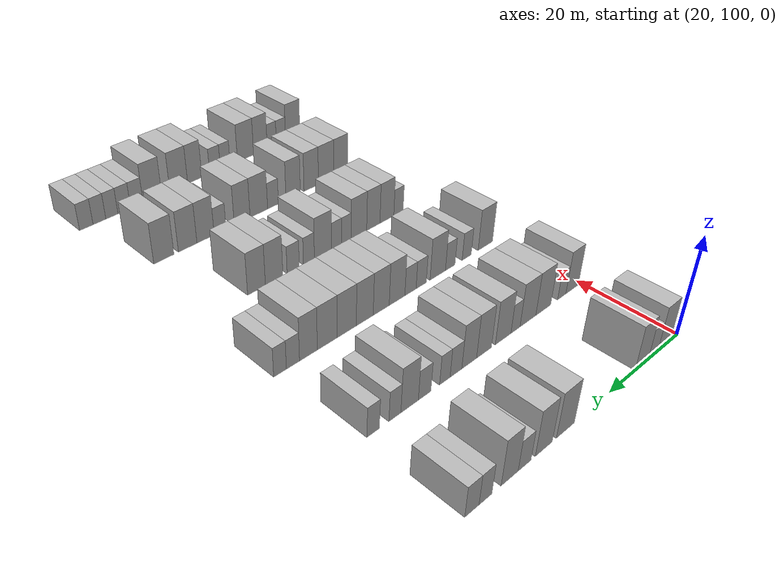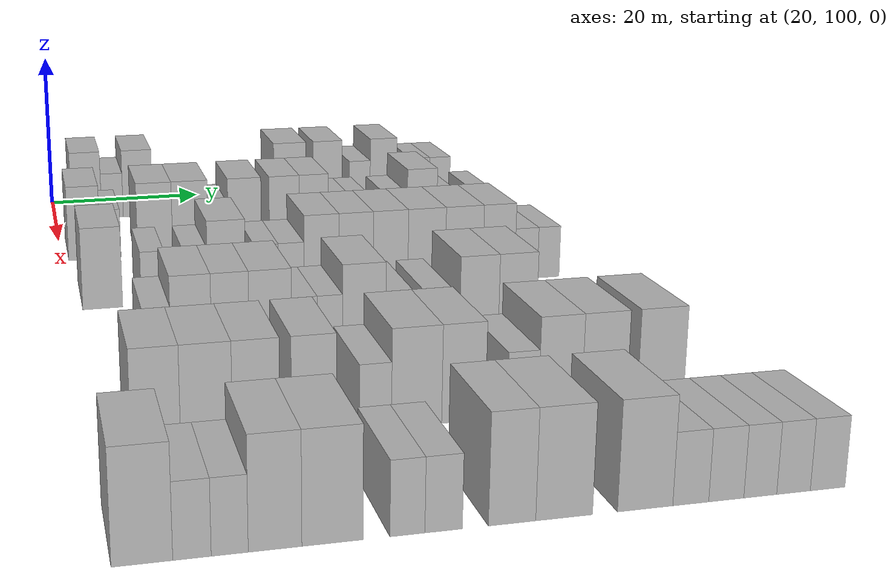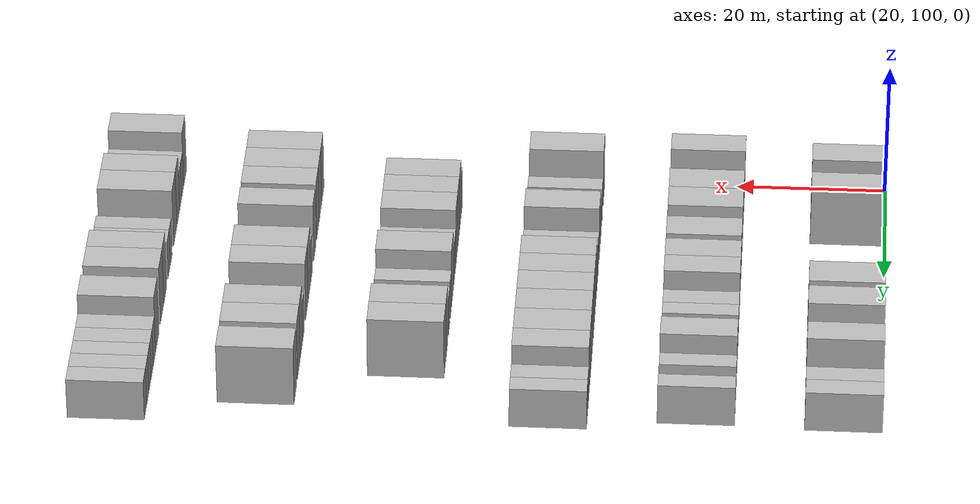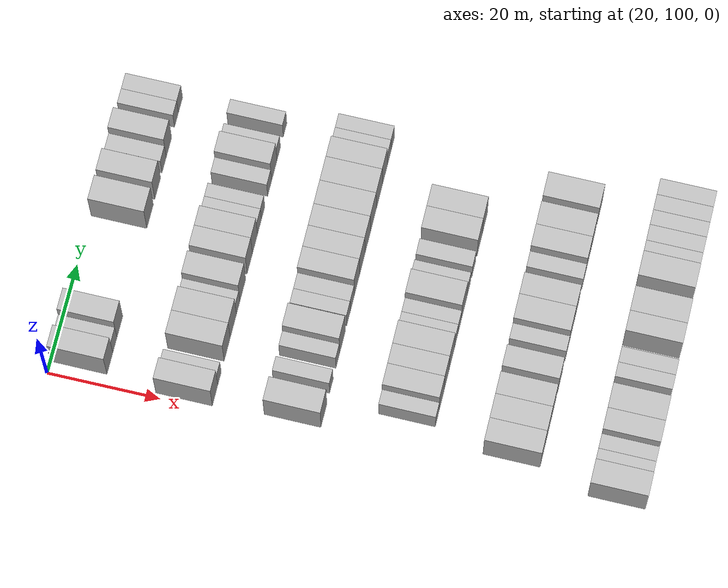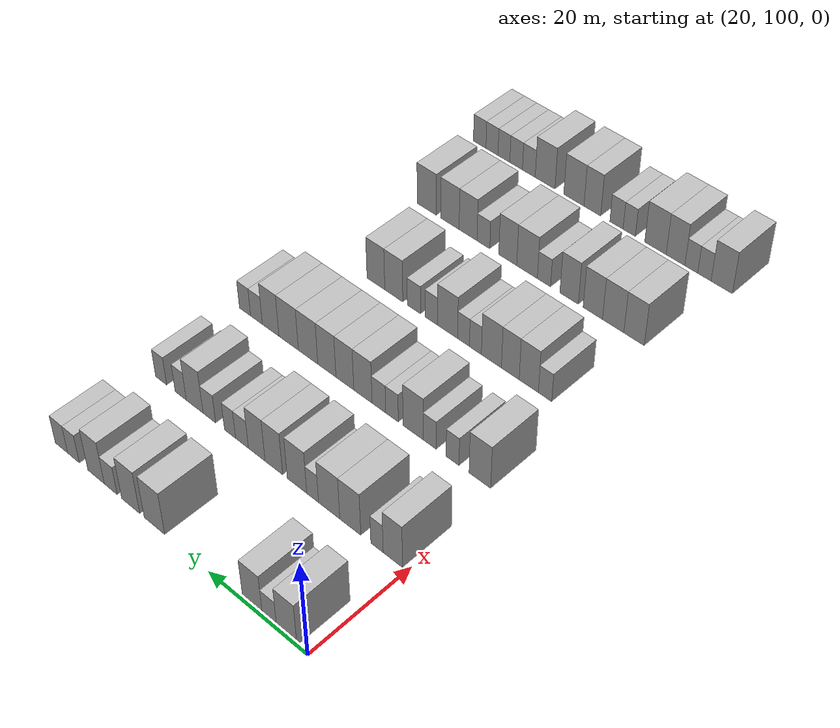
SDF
<sdf version="1.6">
 <world name="default">
  <model name="building_111">
   <static>1</static>
   <pose>25.0000 104.0846 0 0.000000 0.000000 0.000000</pose>
   <link name="link">
    <pose>0 0 4.50 0 0 0</pose>
    <collision name="collision"><geometry><box><size>10.0000 3.9375 9.0000</size></box></geometry></collision>
    <visual name="visual">
     <cast_shadows>0</cast_shadows>
     <geometry><box><size>10.0000 3.9375 9.0000</size></box></geometry>
     <material>
      <script>
       <uri>model://HANNAS_wall/materials/scripts</uri>
       <uri>model://HANNAS_wall/materials/textures</uri>
       <name>vrc/HANNAS_wall</name>
      </script>
     </material>
    </visual>
   </link>
  </model>
  <model name="building_112">
   <static>1</static>
   <pose>25.0000 107.4729 0 0.000000 0.000000 0.000000</pose>
   <link name="link">
    <pose>0 0 3.00 0 0 0</pose>
    <collision name="collision"><geometry><box><size>10.0000 2.8390 6.0000</size></box></geometry></collision>
    <visual name="visual">
     <cast_shadows>0</cast_shadows>
     <geometry><box><size>10.0000 2.8390 6.0000</size></box></geometry>
     <material>
      <script>
       <uri>model://HANNAS_wall/materials/scripts</uri>
       <uri>model://HANNAS_wall/materials/textures</uri>
       <name>vrc/HANNAS_wall</name>
      </script>
     </material>
    </visual>
   </link>
  </model>
  <model name="building_113">
   <static>1</static>
   <pose>25.0000 110.8569 0 0.000000 0.000000 0.000000</pose>
   <link name="link">
    <pose>0 0 4.50 0 0 0</pose>
    <collision name="collision"><geometry><box><size>10.0000 3.9290 9.0000</size></box></geometry></collision>
    <visual name="visual">
     <cast_shadows>0</cast_shadows>
     <geometry><box><size>10.0000 3.9290 9.0000</size></box></geometry>
     <material>
      <script>
       <uri>model://HANNAS_wall/materials/scripts</uri>
       <uri>model://HANNAS_wall/materials/textures</uri>
       <name>vrc/HANNAS_wall</name>
      </script>
     </material>
    </visual>
   </link>
  </model>
  <model name="building_114">
   <static>1</static>
   <pose>25.0000 131.5525 0 0.000000 0.000000 0.000000</pose>
   <link name="link">
    <pose>0 0 4.50 0 0 0</pose>
    <collision name="collision"><geometry><box><size>10.0000 4.4874 9.0000</size></box></geometry></collision>
    <visual name="visual">
     <cast_shadows>0</cast_shadows>
     <geometry><box><size>10.0000 4.4874 9.0000</size></box></geometry>
     <material>
      <script>
       <uri>model://HANNAS_wall/materials/scripts</uri>
       <uri>model://HANNAS_wall/materials/textures</uri>
       <name>vrc/HANNAS_wall</name>
      </script>
     </material>
    </visual>
   </link>
  </model>
  <model name="building_115">
   <static>1</static>
   <pose>25.0000 136.8221 0 0.000000 0.000000 0.000000</pose>
   <link name="link">
    <pose>0 0 4.50 0 0 0</pose>
    <collision name="collision"><geometry><box><size>10.0000 4.0518 9.0000</size></box></geometry></collision>
    <visual name="visual">
     <cast_shadows>0</cast_shadows>
     <geometry><box><size>10.0000 4.0518 9.0000</size></box></geometry>
     <material>
      <script>
       <uri>model://HANNAS_wall/materials/scripts</uri>
       <uri>model://HANNAS_wall/materials/textures</uri>
       <name>vrc/HANNAS_wall</name>
      </script>
     </material>
    </visual>
   </link>
  </model>
  <model name="building_116">
   <static>1</static>
   <pose>25.0000 141.3214 0 0.000000 0.000000 0.000000</pose>
   <link name="link">
    <pose>0 0 3.00 0 0 0</pose>
    <collision name="collision"><geometry><box><size>10.0000 2.9469 6.0000</size></box></geometry></collision>
    <visual name="visual">
     <cast_shadows>0</cast_shadows>
     <geometry><box><size>10.0000 2.9469 6.0000</size></box></geometry>
     <material>
      <script>
       <uri>model://HANNAS_wall/materials/scripts</uri>
       <uri>model://HANNAS_wall/materials/textures</uri>
       <name>vrc/HANNAS_wall</name>
      </script>
     </material>
    </visual>
   </link>
  </model>
  <model name="building_117">
   <static>1</static>
   <pose>25.0000 144.6897 0 0.000000 0.000000 0.000000</pose>
   <link name="link">
    <pose>0 0 4.50 0 0 0</pose>
    <collision name="collision"><geometry><box><size>10.0000 3.7896 9.0000</size></box></geometry></collision>
    <visual name="visual">
     <cast_shadows>0</cast_shadows>
     <geometry><box><size>10.0000 3.7896 9.0000</size></box></geometry>
     <material>
      <script>
       <uri>model://HANNAS_wall/materials/scripts</uri>
       <uri>model://HANNAS_wall/materials/textures</uri>
       <name>vrc/HANNAS_wall</name>
      </script>
     </material>
    </visual>
   </link>
  </model>
  <model name="building_118">
   <static>1</static>
   <pose>25.0000 149.9549 0 0.000000 0.000000 0.000000</pose>
   <link name="link">
    <pose>0 0 3.00 0 0 0</pose>
    <collision name="collision"><geometry><box><size>10.0000 2.7409 6.0000</size></box></geometry></collision>
    <visual name="visual">
     <cast_shadows>0</cast_shadows>
     <geometry><box><size>10.0000 2.7409 6.0000</size></box></geometry>
     <material>
      <script>
       <uri>model://HANNAS_wall/materials/scripts</uri>
       <uri>model://HANNAS_wall/materials/textures</uri>
       <name>vrc/HANNAS_wall</name>
      </script>
     </material>
    </visual>
   </link>
  </model>
  <model name="building_119">
   <static>1</static>
   <pose>25.0000 152.8017 0 0.000000 0.000000 0.000000</pose>
   <link name="link">
    <pose>0 0 3.00 0 0 0</pose>
    <collision name="collision"><geometry><box><size>10.0000 2.9526 6.0000</size></box></geometry></collision>
    <visual name="visual">
     <cast_shadows>0</cast_shadows>
     <geometry><box><size>10.0000 2.9526 6.0000</size></box></geometry>
     <material>
      <script>
       <uri>model://HANNAS_wall/materials/scripts</uri>
       <uri>model://HANNAS_wall/materials/textures</uri>
       <name>vrc/HANNAS_wall</name>
      </script>
     </material>
    </visual>
   </link>
  </model>
  <model name="building_282">
   <static>1</static>
   <pose>44.0000 102.7587 0 0.000000 0.000000 0.000000</pose>
   <link name="link">
    <pose>0 0 4.50 0 0 0</pose>
    <collision name="collision"><geometry><box><size>10.0000 3.7776 9.0000</size></box></geometry></collision>
    <visual name="visual">
     <cast_shadows>0</cast_shadows>
     <geometry><box><size>10.0000 3.7776 9.0000</size></box></geometry>
     <material>
      <script>
       <uri>model://HANNAS_wall/materials/scripts</uri>
       <uri>model://HANNAS_wall/materials/textures</uri>
       <name>vrc/HANNAS_wall</name>
      </script>
     </material>
    </visual>
   </link>
  </model>
  <model name="building_283">
   <static>1</static>
   <pose>44.0000 105.8666 0 0.000000 0.000000 0.000000</pose>
   <link name="link">
    <pose>0 0 3.00 0 0 0</pose>
    <collision name="collision"><geometry><box><size>10.0000 2.4382 6.0000</size></box></geometry></collision>
    <visual name="visual">
     <cast_shadows>0</cast_shadows>
     <geometry><box><size>10.0000 2.4382 6.0000</size></box></geometry>
     <material>
      <script>
       <uri>model://HANNAS_wall/materials/scripts</uri>
       <uri>model://HANNAS_wall/materials/textures</uri>
       <name>vrc/HANNAS_wall</name>
      </script>
     </material>
    </visual>
   </link>
  </model>
  <model name="building_284">
   <static>1</static>
   <pose>44.0000 111.2083 0 0.000000 0.000000 0.000000</pose>
   <link name="link">
    <pose>0 0 4.50 0 0 0</pose>
    <collision name="collision"><geometry><box><size>10.0000 4.2451 9.0000</size></box></geometry></collision>
    <visual name="visual">
     <cast_shadows>0</cast_shadows>
     <geometry><box><size>10.0000 4.2451 9.0000</size></box></geometry>
     <material>
      <script>
       <uri>model://HANNAS_wall/materials/scripts</uri>
       <uri>model://HANNAS_wall/materials/textures</uri>
       <name>vrc/HANNAS_wall</name>
      </script>
     </material>
    </visual>
   </link>
  </model>
  <model name="building_285">
   <static>1</static>
   <pose>44.0000 115.5160 0 0.000000 0.000000 0.000000</pose>
   <link name="link">
    <pose>0 0 4.50 0 0 0</pose>
    <collision name="collision"><geometry><box><size>10.0000 4.3703 9.0000</size></box></geometry></collision>
    <visual name="visual">
     <cast_shadows>0</cast_shadows>
     <geometry><box><size>10.0000 4.3703 9.0000</size></box></geometry>
     <material>
      <script>
       <uri>model://HANNAS_wall/materials/scripts</uri>
       <uri>model://HANNAS_wall/materials/textures</uri>
       <name>vrc/HANNAS_wall</name>
      </script>
     </material>
    </visual>
   </link>
  </model>
  <model name="building_286">
   <static>1</static>
   <pose>44.0000 118.9259 0 0.000000 0.000000 0.000000</pose>
   <link name="link">
    <pose>0 0 3.00 0 0 0</pose>
    <collision name="collision"><geometry><box><size>10.0000 2.4495 6.0000</size></box></geometry></collision>
    <visual name="visual">
     <cast_shadows>0</cast_shadows>
     <geometry><box><size>10.0000 2.4495 6.0000</size></box></geometry>
     <material>
      <script>
       <uri>model://HANNAS_wall/materials/scripts</uri>
       <uri>model://HANNAS_wall/materials/textures</uri>
       <name>vrc/HANNAS_wall</name>
      </script>
     </material>
    </visual>
   </link>
  </model>
  <model name="building_287">
   <static>1</static>
   <pose>44.0000 122.2029 0 0.000000 0.000000 0.000000</pose>
   <link name="link">
    <pose>0 0 4.50 0 0 0</pose>
    <collision name="collision"><geometry><box><size>10.0000 4.1045 9.0000</size></box></geometry></collision>
    <visual name="visual">
     <cast_shadows>0</cast_shadows>
     <geometry><box><size>10.0000 4.1045 9.0000</size></box></geometry>
     <material>
      <script>
       <uri>model://HANNAS_wall/materials/scripts</uri>
       <uri>model://HANNAS_wall/materials/textures</uri>
       <name>vrc/HANNAS_wall</name>
      </script>
     </material>
    </visual>
   </link>
  </model>
  <model name="building_288">
   <static>1</static>
   <pose>44.0000 127.1375 0 0.000000 0.000000 0.000000</pose>
   <link name="link">
    <pose>0 0 4.50 0 0 0</pose>
    <collision name="collision"><geometry><box><size>10.0000 3.7648 9.0000</size></box></geometry></collision>
    <visual name="visual">
     <cast_shadows>0</cast_shadows>
     <geometry><box><size>10.0000 3.7648 9.0000</size></box></geometry>
     <material>
      <script>
       <uri>model://HANNAS_wall/materials/scripts</uri>
       <uri>model://HANNAS_wall/materials/textures</uri>
       <name>vrc/HANNAS_wall</name>
      </script>
     </material>
    </visual>
   </link>
  </model>
  <model name="building_289">
   <static>1</static>
   <pose>44.0000 130.8393 0 0.000000 0.000000 0.000000</pose>
   <link name="link">
    <pose>0 0 4.50 0 0 0</pose>
    <collision name="collision"><geometry><box><size>10.0000 3.6388 9.0000</size></box></geometry></collision>
    <visual name="visual">
     <cast_shadows>0</cast_shadows>
     <geometry><box><size>10.0000 3.6388 9.0000</size></box></geometry>
     <material>
      <script>
       <uri>model://HANNAS_wall/materials/scripts</uri>
       <uri>model://HANNAS_wall/materials/textures</uri>
       <name>vrc/HANNAS_wall</name>
      </script>
     </material>
    </visual>
   </link>
  </model>
  <model name="building_290">
   <static>1</static>
   <pose>44.0000 134.0689 0 0.000000 0.000000 0.000000</pose>
   <link name="link">
    <pose>0 0 3.00 0 0 0</pose>
    <collision name="collision"><geometry><box><size>10.0000 2.8203 6.0000</size></box></geometry></collision>
    <visual name="visual">
     <cast_shadows>0</cast_shadows>
     <geometry><box><size>10.0000 2.8203 6.0000</size></box></geometry>
     <material>
      <script>
       <uri>model://HANNAS_wall/materials/scripts</uri>
       <uri>model://HANNAS_wall/materials/textures</uri>
       <name>vrc/HANNAS_wall</name>
      </script>
     </material>
    </visual>
   </link>
  </model>
  <model name="building_291">
   <static>1</static>
   <pose>44.0000 136.7144 0 0.000000 0.000000 0.000000</pose>
   <link name="link">
    <pose>0 0 3.00 0 0 0</pose>
    <collision name="collision"><geometry><box><size>10.0000 2.4708 6.0000</size></box></geometry></collision>
    <visual name="visual">
     <cast_shadows>0</cast_shadows>
     <geometry><box><size>10.0000 2.4708 6.0000</size></box></geometry>
     <material>
      <script>
       <uri>model://HANNAS_wall/materials/scripts</uri>
       <uri>model://HANNAS_wall/materials/textures</uri>
       <name>vrc/HANNAS_wall</name>
      </script>
     </material>
    </visual>
   </link>
  </model>
  <model name="building_292">
   <static>1</static>
   <pose>44.0000 141.3769 0 0.000000 0.000000 0.000000</pose>
   <link name="link">
    <pose>0 0 3.00 0 0 0</pose>
    <collision name="collision"><geometry><box><size>10.0000 2.8542 6.0000</size></box></geometry></collision>
    <visual name="visual">
     <cast_shadows>0</cast_shadows>
     <geometry><box><size>10.0000 2.8542 6.0000</size></box></geometry>
     <material>
      <script>
       <uri>model://HANNAS_wall/materials/scripts</uri>
       <uri>model://HANNAS_wall/materials/textures</uri>
       <name>vrc/HANNAS_wall</name>
      </script>
     </material>
    </visual>
   </link>
  </model>
  <model name="building_293">
   <static>1</static>
   <pose>44.0000 144.7364 0 0.000000 0.000000 0.000000</pose>
   <link name="link">
    <pose>0 0 4.50 0 0 0</pose>
    <collision name="collision"><geometry><box><size>10.0000 3.8647 9.0000</size></box></geometry></collision>
    <visual name="visual">
     <cast_shadows>0</cast_shadows>
     <geometry><box><size>10.0000 3.8647 9.0000</size></box></geometry>
     <material>
      <script>
       <uri>model://HANNAS_wall/materials/scripts</uri>
       <uri>model://HANNAS_wall/materials/textures</uri>
       <name>vrc/HANNAS_wall</name>
      </script>
     </material>
    </visual>
   </link>
  </model>
  <model name="building_294">
   <static>1</static>
   <pose>44.0000 147.9539 0 0.000000 0.000000 0.000000</pose>
   <link name="link">
    <pose>0 0 3.00 0 0 0</pose>
    <collision name="collision"><geometry><box><size>10.0000 2.5703 6.0000</size></box></geometry></collision>
    <visual name="visual">
     <cast_shadows>0</cast_shadows>
     <geometry><box><size>10.0000 2.5703 6.0000</size></box></geometry>
     <material>
      <script>
       <uri>model://HANNAS_wall/materials/scripts</uri>
       <uri>model://HANNAS_wall/materials/textures</uri>
       <name>vrc/HANNAS_wall</name>
      </script>
     </material>
    </visual>
   </link>
  </model>
  <model name="building_295">
   <static>1</static>
   <pose>44.0000 152.5464 0 0.000000 0.000000 0.000000</pose>
   <link name="link">
    <pose>0 0 3.00 0 0 0</pose>
    <collision name="collision"><geometry><box><size>10.0000 2.6148 6.0000</size></box></geometry></collision>
    <visual name="visual">
     <cast_shadows>0</cast_shadows>
     <geometry><box><size>10.0000 2.6148 6.0000</size></box></geometry>
     <material>
      <script>
       <uri>model://HANNAS_wall/materials/scripts</uri>
       <uri>model://HANNAS_wall/materials/textures</uri>
       <name>vrc/HANNAS_wall</name>
      </script>
     </material>
    </visual>
   </link>
  </model>
  <model name="building_448">
   <static>1</static>
   <pose>63.0000 103.6222 0 0.000000 0.000000 0.000000</pose>
   <link name="link">
    <pose>0 0 4.50 0 0 0</pose>
    <collision name="collision"><geometry><box><size>10.0000 4.2492 9.0000</size></box></geometry></collision>
    <visual name="visual">
     <cast_shadows>0</cast_shadows>
     <geometry><box><size>10.0000 4.2492 9.0000</size></box></geometry>
     <material>
      <script>
       <uri>model://HANNAS_wall/materials/scripts</uri>
       <uri>model://HANNAS_wall/materials/textures</uri>
       <name>vrc/HANNAS_wall</name>
      </script>
     </material>
    </visual>
   </link>
  </model>
  <model name="building_449">
   <static>1</static>
   <pose>63.0000 109.0432 0 0.000000 0.000000 0.000000</pose>
   <link name="link">
    <pose>0 0 3.00 0 0 0</pose>
    <collision name="collision"><geometry><box><size>10.0000 2.5929 6.0000</size></box></geometry></collision>
    <visual name="visual">
     <cast_shadows>0</cast_shadows>
     <geometry><box><size>10.0000 2.5929 6.0000</size></box></geometry>
     <material>
      <script>
       <uri>model://HANNAS_wall/materials/scripts</uri>
       <uri>model://HANNAS_wall/materials/textures</uri>
       <name>vrc/HANNAS_wall</name>
      </script>
     </material>
    </visual>
   </link>
  </model>
  <model name="building_450">
   <static>1</static>
   <pose>63.0000 113.6653 0 0.000000 0.000000 0.000000</pose>
   <link name="link">
    <pose>0 0 3.00 0 0 0</pose>
    <collision name="collision"><geometry><box><size>10.0000 2.6512 6.0000</size></box></geometry></collision>
    <visual name="visual">
     <cast_shadows>0</cast_shadows>
     <geometry><box><size>10.0000 2.6512 6.0000</size></box></geometry>
     <material>
      <script>
       <uri>model://HANNAS_wall/materials/scripts</uri>
       <uri>model://HANNAS_wall/materials/textures</uri>
       <name>vrc/HANNAS_wall</name>
      </script>
     </material>
    </visual>
   </link>
  </model>
  <model name="building_451">
   <static>1</static>
   <pose>63.0000 117.0798 0 0.000000 0.000000 0.000000</pose>
   <link name="link">
    <pose>0 0 4.50 0 0 0</pose>
    <collision name="collision"><geometry><box><size>10.0000 4.1778 9.0000</size></box></geometry></collision>
    <visual name="visual">
     <cast_shadows>0</cast_shadows>
     <geometry><box><size>10.0000 4.1778 9.0000</size></box></geometry>
     <material>
      <script>
       <uri>model://HANNAS_wall/materials/scripts</uri>
       <uri>model://HANNAS_wall/materials/textures</uri>
       <name>vrc/HANNAS_wall</name>
      </script>
     </material>
    </visual>
   </link>
  </model>
  <model name="building_452">
   <static>1</static>
   <pose>63.0000 121.4975 0 0.000000 0.000000 0.000000</pose>
   <link name="link">
    <pose>0 0 3.00 0 0 0</pose>
    <collision name="collision"><geometry><box><size>10.0000 2.6577 6.0000</size></box></geometry></collision>
    <visual name="visual">
     <cast_shadows>0</cast_shadows>
     <geometry><box><size>10.0000 2.6577 6.0000</size></box></geometry>
     <material>
      <script>
       <uri>model://HANNAS_wall/materials/scripts</uri>
       <uri>model://HANNAS_wall/materials/textures</uri>
       <name>vrc/HANNAS_wall</name>
      </script>
     </material>
    </visual>
   </link>
  </model>
  <model name="building_453">
   <static>1</static>
   <pose>63.0000 124.2779 0 0.000000 0.000000 0.000000</pose>
   <link name="link">
    <pose>0 0 3.00 0 0 0</pose>
    <collision name="collision"><geometry><box><size>10.0000 2.9032 6.0000</size></box></geometry></collision>
    <visual name="visual">
     <cast_shadows>0</cast_shadows>
     <geometry><box><size>10.0000 2.9032 6.0000</size></box></geometry>
     <material>
      <script>
       <uri>model://HANNAS_wall/materials/scripts</uri>
       <uri>model://HANNAS_wall/materials/textures</uri>
       <name>vrc/HANNAS_wall</name>
      </script>
     </material>
    </visual>
   </link>
  </model>
  <model name="building_454">
   <static>1</static>
   <pose>63.0000 127.6988 0 0.000000 0.000000 0.000000</pose>
   <link name="link">
    <pose>0 0 4.50 0 0 0</pose>
    <collision name="collision"><geometry><box><size>10.0000 3.9385 9.0000</size></box></geometry></collision>
    <visual name="visual">
     <cast_shadows>0</cast_shadows>
     <geometry><box><size>10.0000 3.9385 9.0000</size></box></geometry>
     <material>
      <script>
       <uri>model://HANNAS_wall/materials/scripts</uri>
       <uri>model://HANNAS_wall/materials/textures</uri>
       <name>vrc/HANNAS_wall</name>
      </script>
     </material>
    </visual>
   </link>
  </model>
  <model name="building_455">
   <static>1</static>
   <pose>63.0000 131.6216 0 0.000000 0.000000 0.000000</pose>
   <link name="link">
    <pose>0 0 4.50 0 0 0</pose>
    <collision name="collision"><geometry><box><size>10.0000 3.9072 9.0000</size></box></geometry></collision>
    <visual name="visual">
     <cast_shadows>0</cast_shadows>
     <geometry><box><size>10.0000 3.9072 9.0000</size></box></geometry>
     <material>
      <script>
       <uri>model://HANNAS_wall/materials/scripts</uri>
       <uri>model://HANNAS_wall/materials/textures</uri>
       <name>vrc/HANNAS_wall</name>
      </script>
     </material>
    </visual>
   </link>
  </model>
  <model name="building_456">
   <static>1</static>
   <pose>63.0000 135.5905 0 0.000000 0.000000 0.000000</pose>
   <link name="link">
    <pose>0 0 4.50 0 0 0</pose>
    <collision name="collision"><geometry><box><size>10.0000 4.0304 9.0000</size></box></geometry></collision>
    <visual name="visual">
     <cast_shadows>0</cast_shadows>
     <geometry><box><size>10.0000 4.0304 9.0000</size></box></geometry>
     <material>
      <script>
       <uri>model://HANNAS_wall/materials/scripts</uri>
       <uri>model://HANNAS_wall/materials/textures</uri>
       <name>vrc/HANNAS_wall</name>
      </script>
     </material>
    </visual>
   </link>
  </model>
  <model name="building_457">
   <static>1</static>
   <pose>63.0000 139.7967 0 0.000000 0.000000 0.000000</pose>
   <link name="link">
    <pose>0 0 4.50 0 0 0</pose>
    <collision name="collision"><geometry><box><size>10.0000 4.3820 9.0000</size></box></geometry></collision>
    <visual name="visual">
     <cast_shadows>0</cast_shadows>
     <geometry><box><size>10.0000 4.3820 9.0000</size></box></geometry>
     <material>
      <script>
       <uri>model://HANNAS_wall/materials/scripts</uri>
       <uri>model://HANNAS_wall/materials/textures</uri>
       <name>vrc/HANNAS_wall</name>
      </script>
     </material>
    </visual>
   </link>
  </model>
  <model name="building_458">
   <static>1</static>
   <pose>63.0000 144.2146 0 0.000000 0.000000 0.000000</pose>
   <link name="link">
    <pose>0 0 4.50 0 0 0</pose>
    <collision name="collision"><geometry><box><size>10.0000 4.4539 9.0000</size></box></geometry></collision>
    <visual name="visual">
     <cast_shadows>0</cast_shadows>
     <geometry><box><size>10.0000 4.4539 9.0000</size></box></geometry>
     <material>
      <script>
       <uri>model://HANNAS_wall/materials/scripts</uri>
       <uri>model://HANNAS_wall/materials/textures</uri>
       <name>vrc/HANNAS_wall</name>
      </script>
     </material>
    </visual>
   </link>
  </model>
  <model name="building_459">
   <static>1</static>
   <pose>63.0000 148.3611 0 0.000000 0.000000 0.000000</pose>
   <link name="link">
    <pose>0 0 4.50 0 0 0</pose>
    <collision name="collision"><geometry><box><size>10.0000 3.8391 9.0000</size></box></geometry></collision>
    <visual name="visual">
     <cast_shadows>0</cast_shadows>
     <geometry><box><size>10.0000 3.8391 9.0000</size></box></geometry>
     <material>
      <script>
       <uri>model://HANNAS_wall/materials/scripts</uri>
       <uri>model://HANNAS_wall/materials/textures</uri>
       <name>vrc/HANNAS_wall</name>
      </script>
     </material>
    </visual>
   </link>
  </model>
  <model name="building_460">
   <static>1</static>
   <pose>63.0000 151.6656 0 0.000000 0.000000 0.000000</pose>
   <link name="link">
    <pose>0 0 3.00 0 0 0</pose>
    <collision name="collision"><geometry><box><size>10.0000 2.7698 6.0000</size></box></geometry></collision>
    <visual name="visual">
     <cast_shadows>0</cast_shadows>
     <geometry><box><size>10.0000 2.7698 6.0000</size></box></geometry>
     <material>
      <script>
       <uri>model://HANNAS_wall/materials/scripts</uri>
       <uri>model://HANNAS_wall/materials/textures</uri>
       <name>vrc/HANNAS_wall</name>
      </script>
     </material>
    </visual>
   </link>
  </model>
  <model name="building_461">
   <static>1</static>
   <pose>63.0000 154.3636 0 0.000000 0.000000 0.000000</pose>
   <link name="link">
    <pose>0 0 3.00 0 0 0</pose>
    <collision name="collision"><geometry><box><size>10.0000 2.6262 6.0000</size></box></geometry></collision>
    <visual name="visual">
     <cast_shadows>0</cast_shadows>
     <geometry><box><size>10.0000 2.6262 6.0000</size></box></geometry>
     <material>
      <script>
       <uri>model://HANNAS_wall/materials/scripts</uri>
       <uri>model://HANNAS_wall/materials/textures</uri>
       <name>vrc/HANNAS_wall</name>
      </script>
     </material>
    </visual>
   </link>
  </model>
  <model name="building_617">
   <static>1</static>
   <pose>82.0000 107.4922 0 0.000000 0.000000 0.000000</pose>
   <link name="link">
    <pose>0 0 3.00 0 0 0</pose>
    <collision name="collision"><geometry><box><size>10.0000 2.6756 6.0000</size></box></geometry></collision>
    <visual name="visual">
     <cast_shadows>0</cast_shadows>
     <geometry><box><size>10.0000 2.6756 6.0000</size></box></geometry>
     <material>
      <script>
       <uri>model://HANNAS_wall/materials/scripts</uri>
       <uri>model://HANNAS_wall/materials/textures</uri>
       <name>vrc/HANNAS_wall</name>
      </script>
     </material>
    </visual>
   </link>
  </model>
  <model name="building_618">
   <static>1</static>
   <pose>82.0000 110.7895 0 0.000000 0.000000 0.000000</pose>
   <link name="link">
    <pose>0 0 4.50 0 0 0</pose>
    <collision name="collision"><geometry><box><size>10.0000 3.9190 9.0000</size></box></geometry></collision>
    <visual name="visual">
     <cast_shadows>0</cast_shadows>
     <geometry><box><size>10.0000 3.9190 9.0000</size></box></geometry>
     <material>
      <script>
       <uri>model://HANNAS_wall/materials/scripts</uri>
       <uri>model://HANNAS_wall/materials/textures</uri>
       <name>vrc/HANNAS_wall</name>
      </script>
     </material>
    </visual>
   </link>
  </model>
  <model name="building_619">
   <static>1</static>
   <pose>82.0000 114.5786 0 0.000000 0.000000 0.000000</pose>
   <link name="link">
    <pose>0 0 4.50 0 0 0</pose>
    <collision name="collision"><geometry><box><size>10.0000 3.6591 9.0000</size></box></geometry></collision>
    <visual name="visual">
     <cast_shadows>0</cast_shadows>
     <geometry><box><size>10.0000 3.6591 9.0000</size></box></geometry>
     <material>
      <script>
       <uri>model://HANNAS_wall/materials/scripts</uri>
       <uri>model://HANNAS_wall/materials/textures</uri>
       <name>vrc/HANNAS_wall</name>
      </script>
     </material>
    </visual>
   </link>
  </model>
  <model name="building_620">
   <static>1</static>
   <pose>82.0000 118.5044 0 0.000000 0.000000 0.000000</pose>
   <link name="link">
    <pose>0 0 4.50 0 0 0</pose>
    <collision name="collision"><geometry><box><size>10.0000 4.1924 9.0000</size></box></geometry></collision>
    <visual name="visual">
     <cast_shadows>0</cast_shadows>
     <geometry><box><size>10.0000 4.1924 9.0000</size></box></geometry>
     <material>
      <script>
       <uri>model://HANNAS_wall/materials/scripts</uri>
       <uri>model://HANNAS_wall/materials/textures</uri>
       <name>vrc/HANNAS_wall</name>
      </script>
     </material>
    </visual>
   </link>
  </model>
  <model name="building_621">
   <static>1</static>
   <pose>82.0000 121.8644 0 0.000000 0.000000 0.000000</pose>
   <link name="link">
    <pose>0 0 3.00 0 0 0</pose>
    <collision name="collision"><geometry><box><size>10.0000 2.5275 6.0000</size></box></geometry></collision>
    <visual name="visual">
     <cast_shadows>0</cast_shadows>
     <geometry><box><size>10.0000 2.5275 6.0000</size></box></geometry>
     <material>
      <script>
       <uri>model://HANNAS_wall/materials/scripts</uri>
       <uri>model://HANNAS_wall/materials/textures</uri>
       <name>vrc/HANNAS_wall</name>
      </script>
     </material>
    </visual>
   </link>
  </model>
  <model name="building_622">
   <static>1</static>
   <pose>82.0000 124.3929 0 0.000000 0.000000 0.000000</pose>
   <link name="link">
    <pose>0 0 3.00 0 0 0</pose>
    <collision name="collision"><geometry><box><size>10.0000 2.5295 6.0000</size></box></geometry></collision>
    <visual name="visual">
     <cast_shadows>0</cast_shadows>
     <geometry><box><size>10.0000 2.5295 6.0000</size></box></geometry>
     <material>
      <script>
       <uri>model://HANNAS_wall/materials/scripts</uri>
       <uri>model://HANNAS_wall/materials/textures</uri>
       <name>vrc/HANNAS_wall</name>
      </script>
     </material>
    </visual>
   </link>
  </model>
  <model name="building_623">
   <static>1</static>
   <pose>82.0000 127.8383 0 0.000000 0.000000 0.000000</pose>
   <link name="link">
    <pose>0 0 4.50 0 0 0</pose>
    <collision name="collision"><geometry><box><size>10.0000 4.3613 9.0000</size></box></geometry></collision>
    <visual name="visual">
     <cast_shadows>0</cast_shadows>
     <geometry><box><size>10.0000 4.3613 9.0000</size></box></geometry>
     <material>
      <script>
       <uri>model://HANNAS_wall/materials/scripts</uri>
       <uri>model://HANNAS_wall/materials/textures</uri>
       <name>vrc/HANNAS_wall</name>
      </script>
     </material>
    </visual>
   </link>
  </model>
  <model name="building_624">
   <static>1</static>
   <pose>82.0000 131.3697 0 0.000000 0.000000 0.000000</pose>
   <link name="link">
    <pose>0 0 3.00 0 0 0</pose>
    <collision name="collision"><geometry><box><size>10.0000 2.7015 6.0000</size></box></geometry></collision>
    <visual name="visual">
     <cast_shadows>0</cast_shadows>
     <geometry><box><size>10.0000 2.7015 6.0000</size></box></geometry>
     <material>
      <script>
       <uri>model://HANNAS_wall/materials/scripts</uri>
       <uri>model://HANNAS_wall/materials/textures</uri>
       <name>vrc/HANNAS_wall</name>
      </script>
     </material>
    </visual>
   </link>
  </model>
  <model name="building_625">
   <static>1</static>
   <pose>82.0000 135.1875 0 0.000000 0.000000 0.000000</pose>
   <link name="link">
    <pose>0 0 3.00 0 0 0</pose>
    <collision name="collision"><geometry><box><size>10.0000 2.9341 6.0000</size></box></geometry></collision>
    <visual name="visual">
     <cast_shadows>0</cast_shadows>
     <geometry><box><size>10.0000 2.9341 6.0000</size></box></geometry>
     <material>
      <script>
       <uri>model://HANNAS_wall/materials/scripts</uri>
       <uri>model://HANNAS_wall/materials/textures</uri>
       <name>vrc/HANNAS_wall</name>
      </script>
     </material>
    </visual>
   </link>
  </model>
  <model name="building_626">
   <static>1</static>
   <pose>82.0000 139.6909 0 0.000000 0.000000 0.000000</pose>
   <link name="link">
    <pose>0 0 4.50 0 0 0</pose>
    <collision name="collision"><geometry><box><size>10.0000 4.0728 9.0000</size></box></geometry></collision>
    <visual name="visual">
     <cast_shadows>0</cast_shadows>
     <geometry><box><size>10.0000 4.0728 9.0000</size></box></geometry>
     <material>
      <script>
       <uri>model://HANNAS_wall/materials/scripts</uri>
       <uri>model://HANNAS_wall/materials/textures</uri>
       <name>vrc/HANNAS_wall</name>
      </script>
     </material>
    </visual>
   </link>
  </model>
  <model name="building_627">
   <static>1</static>
   <pose>82.0000 143.7505 0 0.000000 0.000000 0.000000</pose>
   <link name="link">
    <pose>0 0 4.50 0 0 0</pose>
    <collision name="collision"><geometry><box><size>10.0000 4.0464 9.0000</size></box></geometry></collision>
    <visual name="visual">
     <cast_shadows>0</cast_shadows>
     <geometry><box><size>10.0000 4.0464 9.0000</size></box></geometry>
     <material>
      <script>
       <uri>model://HANNAS_wall/materials/scripts</uri>
       <uri>model://HANNAS_wall/materials/textures</uri>
       <name>vrc/HANNAS_wall</name>
      </script>
     </material>
    </visual>
   </link>
  </model>
  <model name="building_792">
   <static>1</static>
   <pose>101.0000 105.4153 0 0.000000 0.000000 0.000000</pose>
   <link name="link">
    <pose>0 0 4.50 0 0 0</pose>
    <collision name="collision"><geometry><box><size>10.0000 4.1050 9.0000</size></box></geometry></collision>
    <visual name="visual">
     <cast_shadows>0</cast_shadows>
     <geometry><box><size>10.0000 4.1050 9.0000</size></box></geometry>
     <material>
      <script>
       <uri>model://HANNAS_wall/materials/scripts</uri>
       <uri>model://HANNAS_wall/materials/textures</uri>
       <name>vrc/HANNAS_wall</name>
      </script>
     </material>
    </visual>
   </link>
  </model>
  <model name="building_793">
   <static>1</static>
   <pose>101.0000 109.6425 0 0.000000 0.000000 0.000000</pose>
   <link name="link">
    <pose>0 0 4.50 0 0 0</pose>
    <collision name="collision"><geometry><box><size>10.0000 4.3493 9.0000</size></box></geometry></collision>
    <visual name="visual">
     <cast_shadows>0</cast_shadows>
     <geometry><box><size>10.0000 4.3493 9.0000</size></box></geometry>
     <material>
      <script>
       <uri>model://HANNAS_wall/materials/scripts</uri>
       <uri>model://HANNAS_wall/materials/textures</uri>
       <name>vrc/HANNAS_wall</name>
      </script>
     </material>
    </visual>
   </link>
  </model>
  <model name="building_794">
   <static>1</static>
   <pose>101.0000 113.8243 0 0.000000 0.000000 0.000000</pose>
   <link name="link">
    <pose>0 0 4.50 0 0 0</pose>
    <collision name="collision"><geometry><box><size>10.0000 4.0144 9.0000</size></box></geometry></collision>
    <visual name="visual">
     <cast_shadows>0</cast_shadows>
     <geometry><box><size>10.0000 4.0144 9.0000</size></box></geometry>
     <material>
      <script>
       <uri>model://HANNAS_wall/materials/scripts</uri>
       <uri>model://HANNAS_wall/materials/textures</uri>
       <name>vrc/HANNAS_wall</name>
      </script>
     </material>
    </visual>
   </link>
  </model>
  <model name="building_795">
   <static>1</static>
   <pose>101.0000 118.7702 0 0.000000 0.000000 0.000000</pose>
   <link name="link">
    <pose>0 0 4.50 0 0 0</pose>
    <collision name="collision"><geometry><box><size>10.0000 3.8774 9.0000</size></box></geometry></collision>
    <visual name="visual">
     <cast_shadows>0</cast_shadows>
     <geometry><box><size>10.0000 3.8774 9.0000</size></box></geometry>
     <material>
      <script>
       <uri>model://HANNAS_wall/materials/scripts</uri>
       <uri>model://HANNAS_wall/materials/textures</uri>
       <name>vrc/HANNAS_wall</name>
      </script>
     </material>
    </visual>
   </link>
  </model>
  <model name="building_796">
   <static>1</static>
   <pose>101.0000 124.1257 0 0.000000 0.000000 0.000000</pose>
   <link name="link">
    <pose>0 0 3.00 0 0 0</pose>
    <collision name="collision"><geometry><box><size>10.0000 2.8336 6.0000</size></box></geometry></collision>
    <visual name="visual">
     <cast_shadows>0</cast_shadows>
     <geometry><box><size>10.0000 2.8336 6.0000</size></box></geometry>
     <material>
      <script>
       <uri>model://HANNAS_wall/materials/scripts</uri>
       <uri>model://HANNAS_wall/materials/textures</uri>
       <name>vrc/HANNAS_wall</name>
      </script>
     </material>
    </visual>
   </link>
  </model>
  <model name="building_797">
   <static>1</static>
   <pose>101.0000 127.7839 0 0.000000 0.000000 0.000000</pose>
   <link name="link">
    <pose>0 0 4.50 0 0 0</pose>
    <collision name="collision"><geometry><box><size>10.0000 4.4828 9.0000</size></box></geometry></collision>
    <visual name="visual">
     <cast_shadows>0</cast_shadows>
     <geometry><box><size>10.0000 4.4828 9.0000</size></box></geometry>
     <material>
      <script>
       <uri>model://HANNAS_wall/materials/scripts</uri>
       <uri>model://HANNAS_wall/materials/textures</uri>
       <name>vrc/HANNAS_wall</name>
      </script>
     </material>
    </visual>
   </link>
  </model>
  <model name="building_798">
   <static>1</static>
   <pose>101.0000 132.0015 0 0.000000 0.000000 0.000000</pose>
   <link name="link">
    <pose>0 0 4.50 0 0 0</pose>
    <collision name="collision"><geometry><box><size>10.0000 3.9524 9.0000</size></box></geometry></collision>
    <visual name="visual">
     <cast_shadows>0</cast_shadows>
     <geometry><box><size>10.0000 3.9524 9.0000</size></box></geometry>
     <material>
      <script>
       <uri>model://HANNAS_wall/materials/scripts</uri>
       <uri>model://HANNAS_wall/materials/textures</uri>
       <name>vrc/HANNAS_wall</name>
      </script>
     </material>
    </visual>
   </link>
  </model>
  <model name="building_799">
   <static>1</static>
   <pose>101.0000 137.4181 0 0.000000 0.000000 0.000000</pose>
   <link name="link">
    <pose>0 0 3.00 0 0 0</pose>
    <collision name="collision"><geometry><box><size>10.0000 2.8808 6.0000</size></box></geometry></collision>
    <visual name="visual">
     <cast_shadows>0</cast_shadows>
     <geometry><box><size>10.0000 2.8808 6.0000</size></box></geometry>
     <material>
      <script>
       <uri>model://HANNAS_wall/materials/scripts</uri>
       <uri>model://HANNAS_wall/materials/textures</uri>
       <name>vrc/HANNAS_wall</name>
      </script>
     </material>
    </visual>
   </link>
  </model>
  <model name="building_800">
   <static>1</static>
   <pose>101.0000 140.8842 0 0.000000 0.000000 0.000000</pose>
   <link name="link">
    <pose>0 0 4.50 0 0 0</pose>
    <collision name="collision"><geometry><box><size>10.0000 4.0514 9.0000</size></box></geometry></collision>
    <visual name="visual">
     <cast_shadows>0</cast_shadows>
     <geometry><box><size>10.0000 4.0514 9.0000</size></box></geometry>
     <material>
      <script>
       <uri>model://HANNAS_wall/materials/scripts</uri>
       <uri>model://HANNAS_wall/materials/textures</uri>
       <name>vrc/HANNAS_wall</name>
      </script>
     </material>
    </visual>
   </link>
  </model>
  <model name="building_801">
   <static>1</static>
   <pose>101.0000 145.0424 0 0.000000 0.000000 0.000000</pose>
   <link name="link">
    <pose>0 0 4.50 0 0 0</pose>
    <collision name="collision"><geometry><box><size>10.0000 4.2650 9.0000</size></box></geometry></collision>
    <visual name="visual">
     <cast_shadows>0</cast_shadows>
     <geometry><box><size>10.0000 4.2650 9.0000</size></box></geometry>
     <material>
      <script>
       <uri>model://HANNAS_wall/materials/scripts</uri>
       <uri>model://HANNAS_wall/materials/textures</uri>
       <name>vrc/HANNAS_wall</name>
      </script>
     </material>
    </visual>
   </link>
  </model>
  <model name="building_802">
   <static>1</static>
   <pose>101.0000 150.4124 0 0.000000 0.000000 0.000000</pose>
   <link name="link">
    <pose>0 0 4.50 0 0 0</pose>
    <collision name="collision"><geometry><box><size>10.0000 4.4749 9.0000</size></box></geometry></collision>
    <visual name="visual">
     <cast_shadows>0</cast_shadows>
     <geometry><box><size>10.0000 4.4749 9.0000</size></box></geometry>
     <material>
      <script>
       <uri>model://HANNAS_wall/materials/scripts</uri>
       <uri>model://HANNAS_wall/materials/textures</uri>
       <name>vrc/HANNAS_wall</name>
      </script>
     </material>
    </visual>
   </link>
  </model>
  <model name="building_969">
   <static>1</static>
   <pose>120.0000 102.4734 0 0.000000 0.000000 0.000000</pose>
   <link name="link">
    <pose>0 0 4.50 0 0 0</pose>
    <collision name="collision"><geometry><box><size>10.0000 4.2920 9.0000</size></box></geometry></collision>
    <visual name="visual">
     <cast_shadows>0</cast_shadows>
     <geometry><box><size>10.0000 4.2920 9.0000</size></box></geometry>
     <material>
      <script>
       <uri>model://HANNAS_wall/materials/scripts</uri>
       <uri>model://HANNAS_wall/materials/textures</uri>
       <name>vrc/HANNAS_wall</name>
      </script>
     </material>
    </visual>
   </link>
  </model>
  <model name="building_970">
   <static>1</static>
   <pose>120.0000 105.9751 0 0.000000 0.000000 0.000000</pose>
   <link name="link">
    <pose>0 0 3.00 0 0 0</pose>
    <collision name="collision"><geometry><box><size>10.0000 2.7114 6.0000</size></box></geometry></collision>
    <visual name="visual">
     <cast_shadows>0</cast_shadows>
     <geometry><box><size>10.0000 2.7114 6.0000</size></box></geometry>
     <material>
      <script>
       <uri>model://HANNAS_wall/materials/scripts</uri>
       <uri>model://HANNAS_wall/materials/textures</uri>
       <name>vrc/HANNAS_wall</name>
      </script>
     </material>
    </visual>
   </link>
  </model>
  <model name="building_971">
   <static>1</static>
   <pose>120.0000 108.6501 0 0.000000 0.000000 0.000000</pose>
   <link name="link">
    <pose>0 0 3.00 0 0 0</pose>
    <collision name="collision"><geometry><box><size>10.0000 2.6386 6.0000</size></box></geometry></collision>
    <visual name="visual">
     <cast_shadows>0</cast_shadows>
     <geometry><box><size>10.0000 2.6386 6.0000</size></box></geometry>
     <material>
      <script>
       <uri>model://HANNAS_wall/materials/scripts</uri>
       <uri>model://HANNAS_wall/materials/textures</uri>
       <name>vrc/HANNAS_wall</name>
      </script>
     </material>
    </visual>
   </link>
  </model>
  <model name="building_972">
   <static>1</static>
   <pose>120.0000 111.9078 0 0.000000 0.000000 0.000000</pose>
   <link name="link">
    <pose>0 0 4.50 0 0 0</pose>
    <collision name="collision"><geometry><box><size>10.0000 3.8768 9.0000</size></box></geometry></collision>
    <visual name="visual">
     <cast_shadows>0</cast_shadows>
     <geometry><box><size>10.0000 3.8768 9.0000</size></box></geometry>
     <material>
      <script>
       <uri>model://HANNAS_wall/materials/scripts</uri>
       <uri>model://HANNAS_wall/materials/textures</uri>
       <name>vrc/HANNAS_wall</name>
      </script>
     </material>
    </visual>
   </link>
  </model>
  <model name="building_973">
   <static>1</static>
   <pose>120.0000 116.0959 0 0.000000 0.000000 0.000000</pose>
   <link name="link">
    <pose>0 0 4.50 0 0 0</pose>
    <collision name="collision"><geometry><box><size>10.0000 4.4994 9.0000</size></box></geometry></collision>
    <visual name="visual">
     <cast_shadows>0</cast_shadows>
     <geometry><box><size>10.0000 4.4994 9.0000</size></box></geometry>
     <material>
      <script>
       <uri>model://HANNAS_wall/materials/scripts</uri>
       <uri>model://HANNAS_wall/materials/textures</uri>
       <name>vrc/HANNAS_wall</name>
      </script>
     </material>
    </visual>
   </link>
  </model>
  <model name="building_974">
   <static>1</static>
   <pose>120.0000 121.6650 0 0.000000 0.000000 0.000000</pose>
   <link name="link">
    <pose>0 0 3.00 0 0 0</pose>
    <collision name="collision"><geometry><box><size>10.0000 2.6388 6.0000</size></box></geometry></collision>
    <visual name="visual">
     <cast_shadows>0</cast_shadows>
     <geometry><box><size>10.0000 2.6388 6.0000</size></box></geometry>
     <material>
      <script>
       <uri>model://HANNAS_wall/materials/scripts</uri>
       <uri>model://HANNAS_wall/materials/textures</uri>
       <name>vrc/HANNAS_wall</name>
      </script>
     </material>
    </visual>
   </link>
  </model>
  <model name="building_975">
   <static>1</static>
   <pose>120.0000 124.4100 0 0.000000 0.000000 0.000000</pose>
   <link name="link">
    <pose>0 0 3.00 0 0 0</pose>
    <collision name="collision"><geometry><box><size>10.0000 2.8512 6.0000</size></box></geometry></collision>
    <visual name="visual">
     <cast_shadows>0</cast_shadows>
     <geometry><box><size>10.0000 2.8512 6.0000</size></box></geometry>
     <material>
      <script>
       <uri>model://HANNAS_wall/materials/scripts</uri>
       <uri>model://HANNAS_wall/materials/textures</uri>
       <name>vrc/HANNAS_wall</name>
      </script>
     </material>
    </visual>
   </link>
  </model>
  <model name="building_976">
   <static>1</static>
   <pose>120.0000 129.6797 0 0.000000 0.000000 0.000000</pose>
   <link name="link">
    <pose>0 0 4.50 0 0 0</pose>
    <collision name="collision"><geometry><box><size>10.0000 3.6881 9.0000</size></box></geometry></collision>
    <visual name="visual">
     <cast_shadows>0</cast_shadows>
     <geometry><box><size>10.0000 3.6881 9.0000</size></box></geometry>
     <material>
      <script>
       <uri>model://HANNAS_wall/materials/scripts</uri>
       <uri>model://HANNAS_wall/materials/textures</uri>
       <name>vrc/HANNAS_wall</name>
      </script>
     </material>
    </visual>
   </link>
  </model>
  <model name="building_977">
   <static>1</static>
   <pose>120.0000 133.7699 0 0.000000 0.000000 0.000000</pose>
   <link name="link">
    <pose>0 0 4.50 0 0 0</pose>
    <collision name="collision"><geometry><box><size>10.0000 4.4923 9.0000</size></box></geometry></collision>
    <visual name="visual">
     <cast_shadows>0</cast_shadows>
     <geometry><box><size>10.0000 4.4923 9.0000</size></box></geometry>
     <material>
      <script>
       <uri>model://HANNAS_wall/materials/scripts</uri>
       <uri>model://HANNAS_wall/materials/textures</uri>
       <name>vrc/HANNAS_wall</name>
      </script>
     </material>
    </visual>
   </link>
  </model>
  <model name="building_978">
   <static>1</static>
   <pose>120.0000 140.2634 0 0.000000 0.000000 0.000000</pose>
   <link name="link">
    <pose>0 0 4.50 0 0 0</pose>
    <collision name="collision"><geometry><box><size>10.0000 4.4948 9.0000</size></box></geometry></collision>
    <visual name="visual">
     <cast_shadows>0</cast_shadows>
     <geometry><box><size>10.0000 4.4948 9.0000</size></box></geometry>
     <material>
      <script>
       <uri>model://HANNAS_wall/materials/scripts</uri>
       <uri>model://HANNAS_wall/materials/textures</uri>
       <name>vrc/HANNAS_wall</name>
      </script>
     </material>
    </visual>
   </link>
  </model>
  <model name="building_979">
   <static>1</static>
   <pose>120.0000 143.9922 0 0.000000 0.000000 0.000000</pose>
   <link name="link">
    <pose>0 0 3.00 0 0 0</pose>
    <collision name="collision"><geometry><box><size>10.0000 2.9629 6.0000</size></box></geometry></collision>
    <visual name="visual">
     <cast_shadows>0</cast_shadows>
     <geometry><box><size>10.0000 2.9629 6.0000</size></box></geometry>
     <material>
      <script>
       <uri>model://HANNAS_wall/materials/scripts</uri>
       <uri>model://HANNAS_wall/materials/textures</uri>
       <name>vrc/HANNAS_wall</name>
      </script>
     </material>
    </visual>
   </link>
  </model>
  <model name="building_980">
   <static>1</static>
   <pose>120.0000 146.9391 0 0.000000 0.000000 0.000000</pose>
   <link name="link">
    <pose>0 0 3.00 0 0 0</pose>
    <collision name="collision"><geometry><box><size>10.0000 2.9310 6.0000</size></box></geometry></collision>
    <visual name="visual">
     <cast_shadows>0</cast_shadows>
     <geometry><box><size>10.0000 2.9310 6.0000</size></box></geometry>
     <material>
      <script>
       <uri>model://HANNAS_wall/materials/scripts</uri>
       <uri>model://HANNAS_wall/materials/textures</uri>
       <name>vrc/HANNAS_wall</name>
      </script>
     </material>
    </visual>
   </link>
  </model>
  <model name="building_981">
   <static>1</static>
   <pose>120.0000 149.7911 0 0.000000 0.000000 0.000000</pose>
   <link name="link">
    <pose>0 0 3.00 0 0 0</pose>
    <collision name="collision"><geometry><box><size>10.0000 2.7729 6.0000</size></box></geometry></collision>
    <visual name="visual">
     <cast_shadows>0</cast_shadows>
     <geometry><box><size>10.0000 2.7729 6.0000</size></box></geometry>
     <material>
      <script>
       <uri>model://HANNAS_wall/materials/scripts</uri>
       <uri>model://HANNAS_wall/materials/textures</uri>
       <name>vrc/HANNAS_wall</name>
      </script>
     </material>
    </visual>
   </link>
  </model>
  <model name="building_982">
   <static>1</static>
   <pose>120.0000 152.6084 0 0.000000 0.000000 0.000000</pose>
   <link name="link">
    <pose>0 0 3.00 0 0 0</pose>
    <collision name="collision"><geometry><box><size>10.0000 2.8619 6.0000</size></box></geometry></collision>
    <visual name="visual">
     <cast_shadows>0</cast_shadows>
     <geometry><box><size>10.0000 2.8619 6.0000</size></box></geometry>
     <material>
      <script>
       <uri>model://HANNAS_wall/materials/scripts</uri>
       <uri>model://HANNAS_wall/materials/textures</uri>
       <name>vrc/HANNAS_wall</name>
      </script>
     </material>
    </visual>
   </link>
  </model>
  <model name="building_983">
   <static>1</static>
   <pose>120.0000 155.5326 0 0.000000 0.000000 0.000000</pose>
   <link name="link">
    <pose>0 0 3.00 0 0 0</pose>
    <collision name="collision"><geometry><box><size>10.0000 2.9864 6.0000</size></box></geometry></collision>
    <visual name="visual">
     <cast_shadows>0</cast_shadows>
     <geometry><box><size>10.0000 2.9864 6.0000</size></box></geometry>
     <material>
      <script>
       <uri>model://HANNAS_wall/materials/scripts</uri>
       <uri>model://HANNAS_wall/materials/textures</uri>
       <name>vrc/HANNAS_wall</name>
      </script>
     </material>
    </visual>
   </link>
  </model>
 </world>
</sdf>
